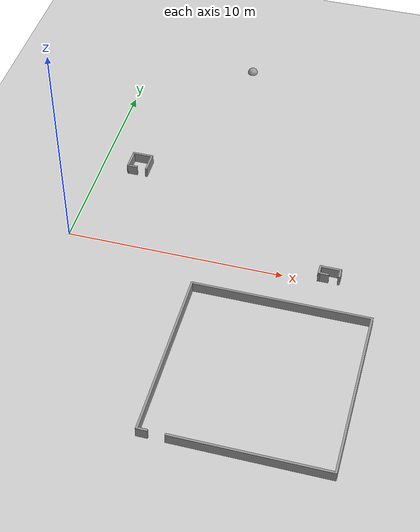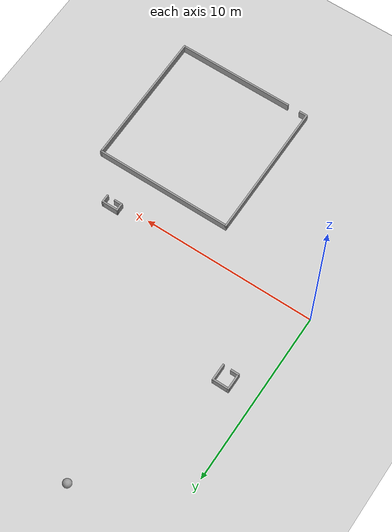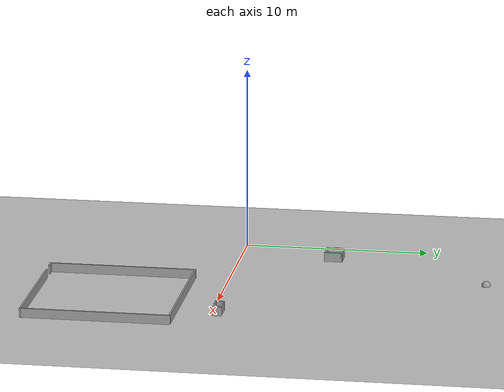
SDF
<sdf version="1.6">
 <world name="default">
  <model name="ground_plane">
   <static>1</static>
   <link name="link">
    <collision name="collision">
     <geometry><plane><normal>0 0 1</normal><size>30 30</size></plane></geometry>
     <surface>
      <contact><collide_bitmask>65535</collide_bitmask></contact>
      <friction><ode><mu>100</mu><mu2>50</mu2></ode></friction>
     </surface>
     <max_contacts>15</max_contacts>
    </collision>
    <visual name="visual">
     <cast_shadows>0</cast_shadows>
     <geometry><plane><normal>0 0 1</normal><size>30 30</size></plane></geometry>
     <material>
      <script><uri>file://media/materials/scripts/gazebo.material</uri><name>Gazebo/Grey</name></script>
     </material>
    </visual>
   </link>
  </model>
  <model name="ball_d=50">
   <link name="link_1">
    <inertial>
     <mass>1</mass>
     <inertia><ixx>0.1</ixx><ixy>0</ixy><ixz>0</ixz><iyy>0.1</iyy><iyz>0</iyz><izz>0.1</izz></inertia>
    </inertial>
    <pose>5.25 13.75 0 0 -0 0</pose>
    <visual name="visual">
     <geometry><sphere><radius>0.25</radius></sphere></geometry>
     <material>
      <lighting>1</lighting>
      <script><uri>file://media/materials/scripts/gazebo.material</uri><name>Gazebo/Grey</name></script>
      <shader type="vertex"><normal_map>__default__</normal_map></shader>
      <ambient>0.3 0.3 0.3 1</ambient>
      <diffuse>0.7 0.7 0.7 1</diffuse>
      <specular>0.01 0.01 0.01 1</specular>
      <emissive>0 0 0 1</emissive>
     </material>
    </visual>
    <collision name="collision">
     <geometry><sphere><radius>0.25</radius></sphere></geometry>
     <surface>
      <friction>
       <ode><mu>1</mu><mu2>1</mu2><fdir1>0 0 0</fdir1><slip1>0</slip1><slip2>0</slip2></ode>
       <torsional>
        <coefficient>1</coefficient>
        <patch_radius>0</patch_radius>
        <surface_radius>0</surface_radius>
        <use_patch_radius>1</use_patch_radius>
        <ode><slip>0</slip></ode>
       </torsional>
      </friction>
      <bounce><restitution_coefficient>0</restitution_coefficient><threshold>1e+06</threshold></bounce>
      <contact>
       <collide_without_contact>0</collide_without_contact>
       <collide_without_contact_bitmask>1</collide_without_contact_bitmask>
       <collide_bitmask>1</collide_bitmask>
       <ode>
        <soft_cfm>0</soft_cfm>
        <soft_erp>0.2</soft_erp>
        <kp>1e+13</kp>
        <kd>1</kd>
        <max_vel>0.01</max_vel>
        <min_depth>0</min_depth>
       </ode>
       <bullet>
        <split_impulse>1</split_impulse>
        <split_impulse_penetration_threshold>-0.01</split_impulse_penetration_threshold>
        <soft_cfm>0</soft_cfm>
        <soft_erp>0.2</soft_erp>
        <kp>1e+13</kp>
        <kd>1</kd>
       </bullet>
      </contact>
     </surface>
    </collision>
   </link>
   <static>0</static>
  </model>
  <model name="shape8">
   <pose>10.3 -5.8 0 0 -0 0</pose>
   <link name="Wall_41">
    <collision name="Wall_41_Collision">
     <geometry><box><size>8 0.1 0.5</size></box></geometry>
     <pose>0 0 0.25 0 -0 0</pose>
    </collision>
    <visual name="Wall_41_Visual">
     <pose>0 0 0.25 0 -0 0</pose>
     <geometry><box><size>8 0.1 0.5</size></box></geometry>
     <material>
      <script><uri>file://media/materials/scripts/gazebo.material</uri><name>Gazebo/Grey</name></script>
      <ambient>1 1 1 1</ambient>
     </material>
     <meta><layer>0</layer></meta>
    </visual>
    <pose>0 3.95 0 0 -0 0</pose>
   </link>
   <link name="Wall_42">
    <collision name="Wall_42_Collision">
     <geometry><box><size>8 0.1 0.5</size></box></geometry>
     <pose>0 0 0.25 0 -0 0</pose>
    </collision>
    <visual name="Wall_42_Visual">
     <pose>0 0 0.25 0 -0 0</pose>
     <geometry><box><size>8 0.1 0.5</size></box></geometry>
     <material>
      <script><uri>file://media/materials/scripts/gazebo.material</uri><name>Gazebo/Grey</name></script>
      <ambient>1 1 1 1</ambient>
     </material>
     <meta><layer>0</layer></meta>
    </visual>
    <pose>3.95 -0 0 0 -0 -1.5708</pose>
   </link>
   <link name="Wall_43">
    <collision name="Wall_43_Collision">
     <geometry><box><size>6.8 0.1 0.5</size></box></geometry>
     <pose>0 0 0.25 0 -0 0</pose>
    </collision>
    <visual name="Wall_43_Visual">
     <pose>0 0 0.25 0 -0 0</pose>
     <geometry><box><size>6.8 0.1 0.5</size></box></geometry>
     <material>
      <script><uri>file://media/materials/scripts/gazebo.material</uri><name>Gazebo/Grey</name></script>
      <ambient>1 1 1 1</ambient>
     </material>
     <meta><layer>0</layer></meta>
    </visual>
    <pose>0.6 -3.95 0 0 -0 3.14159</pose>
   </link>
   <link name="Wall_45">
    <collision name="Wall_45_Collision">
     <geometry><box><size>8 0.1 0.5</size></box></geometry>
     <pose>0 0 0.25 0 -0 0</pose>
    </collision>
    <visual name="Wall_45_Visual">
     <pose>0 0 0.25 0 -0 0</pose>
     <geometry><box><size>8 0.1 0.5</size></box></geometry>
     <material>
      <script><uri>file://media/materials/scripts/gazebo.material</uri><name>Gazebo/Grey</name></script>
      <ambient>1 1 1 1</ambient>
     </material>
     <meta><layer>0</layer></meta>
    </visual>
    <pose>-3.95 -0 0 0 -0 -1.5708</pose>
   </link>
   <link name="Wall_46">
    <collision name="Wall_46_Collision">
     <geometry><box><size>0.5 0.1 0.5</size></box></geometry>
     <pose>0 0 0.25 0 -0 0</pose>
    </collision>
    <visual name="Wall_46_Visual">
     <pose>0 0 0.25 0 -0 0</pose>
     <geometry><box><size>0.5 0.1 0.5</size></box></geometry>
     <material>
      <script><uri>file://media/materials/scripts/gazebo.material</uri><name>Gazebo/Grey</name></script>
      <ambient>1 1 1 1</ambient>
     </material>
     <meta><layer>0</layer></meta>
    </visual>
    <pose>-3.75 -3.95 0 0 -0 0</pose>
   </link>
   <static>1</static>
  </model>
  <model name="shape0">
   <pose>12 0.35 0 0 -0 0</pose>
   <link name="Wall_0">
    <pose>0 0.2 0 0 -0 0</pose>
    <inertial>
     <mass>1</mass>
     <inertia><ixx>1</ixx><ixy>0</ixy><ixz>0</ixz><iyy>1</iyy><iyz>0</iyz><izz>1</izz></inertia>
    </inertial>
    <visual name="Wall_0_Visual">
     <pose>0 0 0.25 0 -0 0</pose>
     <geometry><box><size>1 0.1 0.5</size></box></geometry>
     <material>
      <script><uri>file://media/materials/scripts/gazebo.material</uri><name>Gazebo/Grey</name></script>
      <ambient>1 1 1 1</ambient>
      <shader type="vertex"><normal_map>__default__</normal_map></shader>
      <diffuse>0.7 0.7 0.7 1</diffuse>
      <specular>0.01 0.01 0.01 1</specular>
      <emissive>0 0 0 1</emissive>
     </material>
     <meta><layer>0</layer></meta>
    </visual>
    <collision name="Wall_0_Collision">
     <pose>0 0 0.25 0 -0 0</pose>
     <geometry><box><size>1 0.1 0.5</size></box></geometry>
     <surface>
      <friction>
       <ode><mu>1</mu><mu2>1</mu2><fdir1>0 0 0</fdir1><slip1>0</slip1><slip2>0</slip2></ode>
       <torsional>
        <coefficient>1</coefficient>
        <patch_radius>0</patch_radius>
        <surface_radius>0</surface_radius>
        <use_patch_radius>1</use_patch_radius>
        <ode><slip>0</slip></ode>
       </torsional>
      </friction>
      <bounce><restitution_coefficient>0</restitution_coefficient><threshold>1e+06</threshold></bounce>
      <contact>
       <collide_without_contact>0</collide_without_contact>
       <collide_without_contact_bitmask>1</collide_without_contact_bitmask>
       <collide_bitmask>1</collide_bitmask>
       <ode>
        <soft_cfm>0</soft_cfm>
        <soft_erp>0.2</soft_erp>
        <kp>1e+13</kp>
        <kd>1</kd>
        <max_vel>0.01</max_vel>
        <min_depth>0</min_depth>
       </ode>
       <bullet>
        <split_impulse>1</split_impulse>
        <split_impulse_penetration_threshold>-0.01</split_impulse_penetration_threshold>
        <soft_cfm>0</soft_cfm>
        <soft_erp>0.2</soft_erp>
        <kp>1e+13</kp>
        <kd>1</kd>
       </bullet>
      </contact>
     </surface>
    </collision>
   </link>
   <link name="Wall_2">
    <pose>-0.45 0 0.01 0 0 -1.5708</pose>
    <inertial>
     <mass>1</mass>
     <inertia><ixx>1</ixx><ixy>0</ixy><ixz>0</ixz><iyy>1</iyy><iyz>0</iyz><izz>1</izz></inertia>
    </inertial>
    <visual name="Wall_2_Visual">
     <pose>0 0 0.25 0 -0 0</pose>
     <geometry><box><size>0.5 0.1 0.5</size></box></geometry>
     <material>
      <script><uri>file://media/materials/scripts/gazebo.material</uri><name>Gazebo/Grey</name></script>
      <ambient>1 1 1 1</ambient>
      <shader type="vertex"><normal_map>__default__</normal_map></shader>
      <diffuse>0.7 0.7 0.7 1</diffuse>
      <specular>0.01 0.01 0.01 1</specular>
      <emissive>0 0 0 1</emissive>
     </material>
     <meta><layer>0</layer></meta>
    </visual>
    <collision name="Wall_2_Collision">
     <pose>0 0 0.25 0 -0 0</pose>
     <geometry><box><size>0.5 0.1 0.5</size></box></geometry>
     <surface>
      <friction>
       <ode><mu>1</mu><mu2>1</mu2><fdir1>0 0 0</fdir1><slip1>0</slip1><slip2>0</slip2></ode>
       <torsional>
        <coefficient>1</coefficient>
        <patch_radius>0</patch_radius>
        <surface_radius>0</surface_radius>
        <use_patch_radius>1</use_patch_radius>
        <ode><slip>0</slip></ode>
       </torsional>
      </friction>
      <bounce><restitution_coefficient>0</restitution_coefficient><threshold>1e+06</threshold></bounce>
      <contact>
       <collide_without_contact>0</collide_without_contact>
       <collide_without_contact_bitmask>1</collide_without_contact_bitmask>
       <collide_bitmask>1</collide_bitmask>
       <ode>
        <soft_cfm>0</soft_cfm>
        <soft_erp>0.2</soft_erp>
        <kp>1e+13</kp>
        <kd>1</kd>
        <max_vel>0.01</max_vel>
        <min_depth>0</min_depth>
       </ode>
       <bullet>
        <split_impulse>1</split_impulse>
        <split_impulse_penetration_threshold>-0.01</split_impulse_penetration_threshold>
        <soft_cfm>0</soft_cfm>
        <soft_erp>0.2</soft_erp>
        <kp>1e+13</kp>
        <kd>1</kd>
       </bullet>
      </contact>
     </surface>
    </collision>
   </link>
   <link name="Wall_4">
    <pose>0.45 0 0 0 0 -1.5708</pose>
    <inertial>
     <mass>1</mass>
     <inertia><ixx>1</ixx><ixy>0</ixy><ixz>0</ixz><iyy>1</iyy><iyz>0</iyz><izz>1</izz></inertia>
    </inertial>
    <visual name="Wall_4_Visual">
     <pose>0 0 0.25 0 -0 0</pose>
     <geometry><box><size>0.5 0.1 0.5</size></box></geometry>
     <material>
      <script><uri>file://media/materials/scripts/gazebo.material</uri><name>Gazebo/Grey</name></script>
      <ambient>1 1 1 1</ambient>
      <shader type="vertex"><normal_map>__default__</normal_map></shader>
      <diffuse>0.7 0.7 0.7 1</diffuse>
      <specular>0.01 0.01 0.01 1</specular>
      <emissive>0 0 0 1</emissive>
     </material>
     <meta><layer>0</layer></meta>
    </visual>
    <collision name="Wall_4_Collision">
     <pose>0 0 0.25 0 -0 0</pose>
     <geometry><box><size>0.5 0.1 0.5</size></box></geometry>
     <surface>
      <friction>
       <ode><mu>1</mu><mu2>1</mu2><fdir1>0 0 0</fdir1><slip1>0</slip1><slip2>0</slip2></ode>
       <torsional>
        <coefficient>1</coefficient>
        <patch_radius>0</patch_radius>
        <surface_radius>0</surface_radius>
        <use_patch_radius>1</use_patch_radius>
        <ode><slip>0</slip></ode>
       </torsional>
      </friction>
      <bounce><restitution_coefficient>0</restitution_coefficient><threshold>1e+06</threshold></bounce>
      <contact>
       <collide_without_contact>0</collide_without_contact>
       <collide_without_contact_bitmask>1</collide_without_contact_bitmask>
       <collide_bitmask>1</collide_bitmask>
       <ode>
        <soft_cfm>0</soft_cfm>
        <soft_erp>0.2</soft_erp>
        <kp>1e+13</kp>
        <kd>1</kd>
        <max_vel>0.01</max_vel>
        <min_depth>0</min_depth>
       </ode>
       <bullet>
        <split_impulse>1</split_impulse>
        <split_impulse_penetration_threshold>-0.01</split_impulse_penetration_threshold>
        <soft_cfm>0</soft_cfm>
        <soft_erp>0.2</soft_erp>
        <kp>1e+13</kp>
        <kd>1</kd>
       </bullet>
      </contact>
     </surface>
    </collision>
   </link>
   <link name="Wall_7">
    <pose>-0.25 -0.2 0 0 -0 0</pose>
    <inertial>
     <mass>1</mass>
     <inertia><ixx>1</ixx><ixy>0</ixy><ixz>0</ixz><iyy>1</iyy><iyz>0</iyz><izz>1</izz></inertia>
    </inertial>
    <visual name="Wall_7_Visual">
     <pose>0 0 0.25 0 -0 0</pose>
     <geometry><box><size>0.5 0.1 0.5</size></box></geometry>
     <material>
      <script><uri>file://media/materials/scripts/gazebo.material</uri><name>Gazebo/Grey</name></script>
      <ambient>1 1 1 1</ambient>
      <shader type="vertex"><normal_map>__default__</normal_map></shader>
      <diffuse>0.7 0.7 0.7 1</diffuse>
      <specular>0.01 0.01 0.01 1</specular>
      <emissive>0 0 0 1</emissive>
     </material>
     <meta><layer>0</layer></meta>
    </visual>
    <collision name="Wall_7_Collision">
     <pose>0 0 0.25 0 -0 0</pose>
     <geometry><box><size>0.5 0.1 0.5</size></box></geometry>
     <surface>
      <friction>
       <ode><mu>1</mu><mu2>1</mu2><fdir1>0 0 0</fdir1><slip1>0</slip1><slip2>0</slip2></ode>
       <torsional>
        <coefficient>1</coefficient>
        <patch_radius>0</patch_radius>
        <surface_radius>0</surface_radius>
        <use_patch_radius>1</use_patch_radius>
        <ode><slip>0</slip></ode>
       </torsional>
      </friction>
      <bounce><restitution_coefficient>0</restitution_coefficient><threshold>1e+06</threshold></bounce>
      <contact>
       <collide_without_contact>0</collide_without_contact>
       <collide_without_contact_bitmask>1</collide_without_contact_bitmask>
       <collide_bitmask>1</collide_bitmask>
       <ode>
        <soft_cfm>0</soft_cfm>
        <soft_erp>0.2</soft_erp>
        <kp>1e+13</kp>
        <kd>1</kd>
        <max_vel>0.01</max_vel>
        <min_depth>0</min_depth>
       </ode>
       <bullet>
        <split_impulse>1</split_impulse>
        <split_impulse_penetration_threshold>-0.01</split_impulse_penetration_threshold>
        <soft_cfm>0</soft_cfm>
        <soft_erp>0.2</soft_erp>
        <kp>1e+13</kp>
        <kd>1</kd>
       </bullet>
      </contact>
     </surface>
    </collision>
   </link>
   <static>1</static>
  </model>
  <model name="shape4">
   <pose>1.8 5.1 0 0 -0 0</pose>
   <link name="Wall_14">
    <collision name="Wall_14_Collision">
     <geometry><box><size>1 0.1 0.5</size></box></geometry>
     <pose>0 0 0.25 0 -0 0</pose>
    </collision>
    <visual name="Wall_14_Visual">
     <pose>0 0 0.25 0 -0 0</pose>
     <geometry><box><size>1 0.1 0.5</size></box></geometry>
     <material>
      <script><uri>file://media/materials/scripts/gazebo.material</uri><name>Gazebo/Grey</name></script>
      <ambient>1 1 1 1</ambient>
     </material>
     <meta><layer>0</layer></meta>
    </visual>
    <pose>-0 0.45 0 0 -0 0</pose>
   </link>
   <link name="Wall_15">
    <collision name="Wall_15_Collision">
     <geometry><box><size>1 0.1 0.5</size></box></geometry>
     <pose>0 0 0.25 0 -0 0</pose>
    </collision>
    <visual name="Wall_15_Visual">
     <pose>0 0 0.25 0 -0 0</pose>
     <geometry><box><size>1 0.1 0.5</size></box></geometry>
     <material>
      <script><uri>file://media/materials/scripts/gazebo.material</uri><name>Gazebo/Grey</name></script>
      <ambient>1 1 1 1</ambient>
     </material>
     <meta><layer>0</layer></meta>
    </visual>
    <pose>0.45 -0 0 0 -0 -1.5708</pose>
   </link>
   <link name="Wall_17">
    <collision name="Wall_17_Collision">
     <geometry><box><size>1 0.1 0.5</size></box></geometry>
     <pose>0 0 0.25 0 -0 0</pose>
    </collision>
    <visual name="Wall_17_Visual">
     <pose>0 0 0.25 0 -0 0</pose>
     <geometry><box><size>1 0.1 0.5</size></box></geometry>
     <material>
      <script><uri>file://media/materials/scripts/gazebo.material</uri><name>Gazebo/Grey</name></script>
      <ambient>1 1 1 1</ambient>
     </material>
     <meta><layer>0</layer></meta>
    </visual>
    <pose>-0.45 -0 0 0 -0 -1.5708</pose>
   </link>
   <link name="Wall_18">
    <collision name="Wall_18_Collision">
     <geometry><box><size>0.5 0.1 0.5</size></box></geometry>
     <pose>0 0 0.25 0 -0 0</pose>
    </collision>
    <visual name="Wall_18_Visual">
     <pose>0 0 0.25 0 -0 0</pose>
     <geometry><box><size>0.5 0.1 0.5</size></box></geometry>
     <material>
      <script><uri>file://media/materials/scripts/gazebo.material</uri><name>Gazebo/Grey</name></script>
      <ambient>1 1 1 1</ambient>
     </material>
     <meta><layer>0</layer></meta>
    </visual>
    <pose>-0.25 -0.45 0 0 -0 0</pose>
   </link>
   <static>1</static>
  </model>
 </world>
</sdf>
